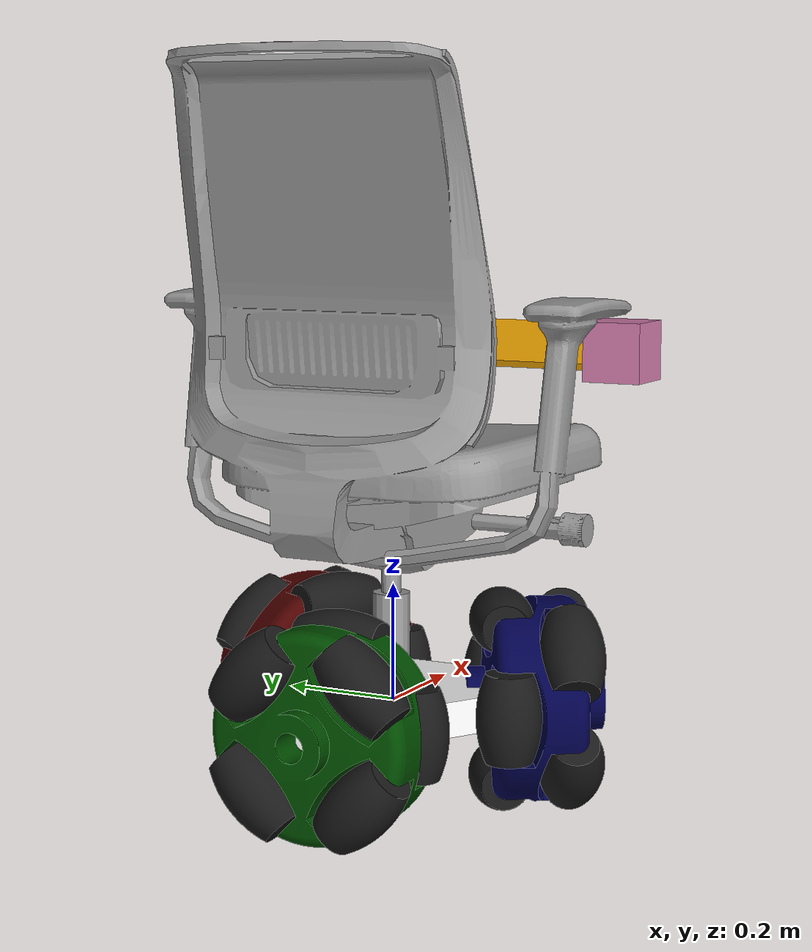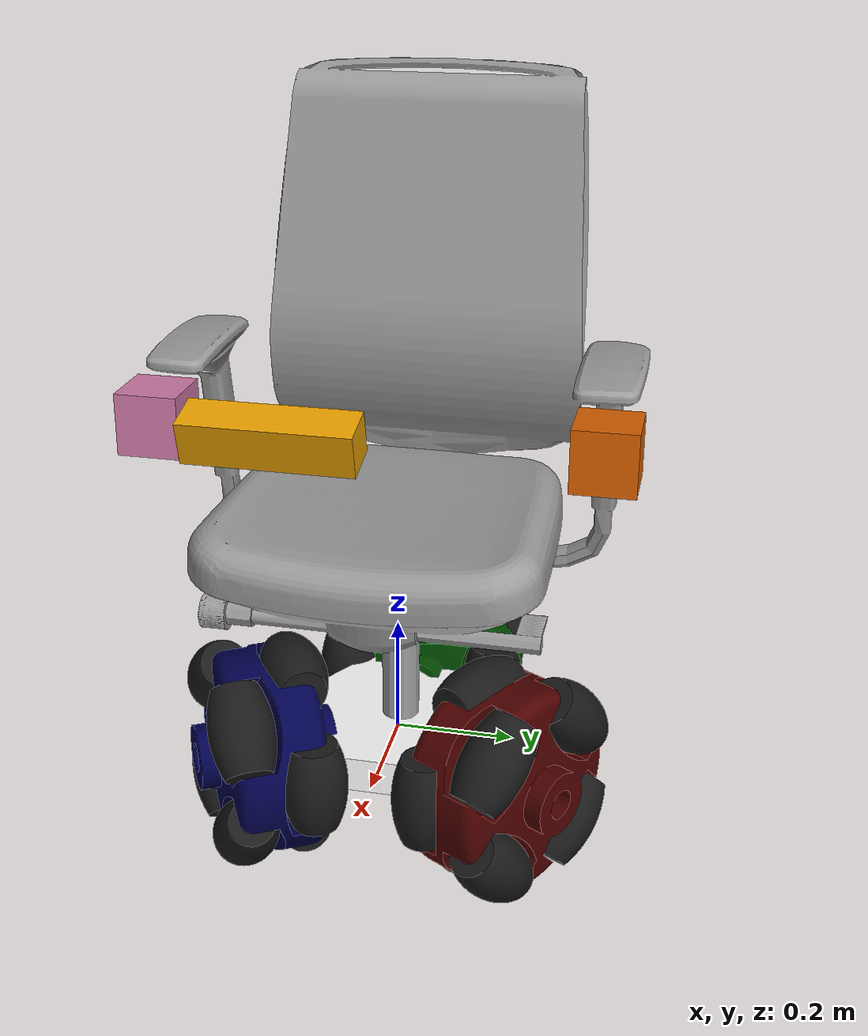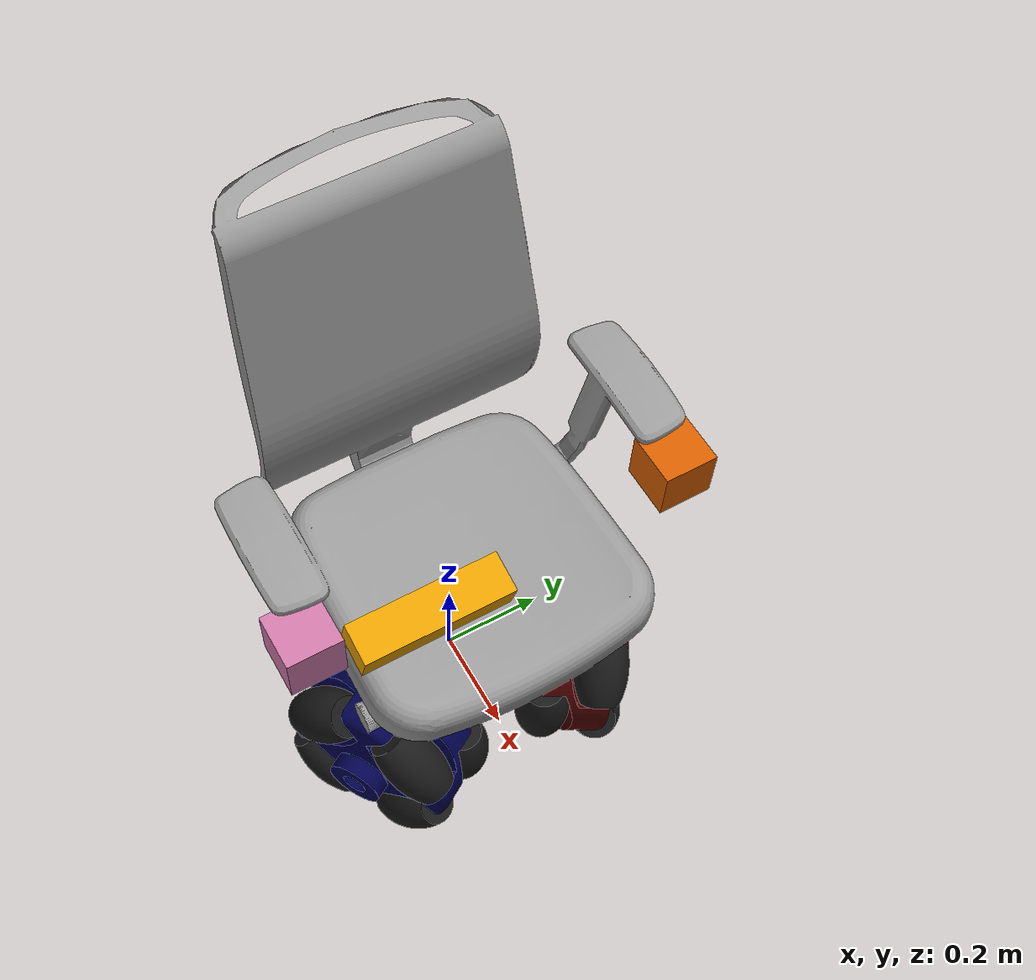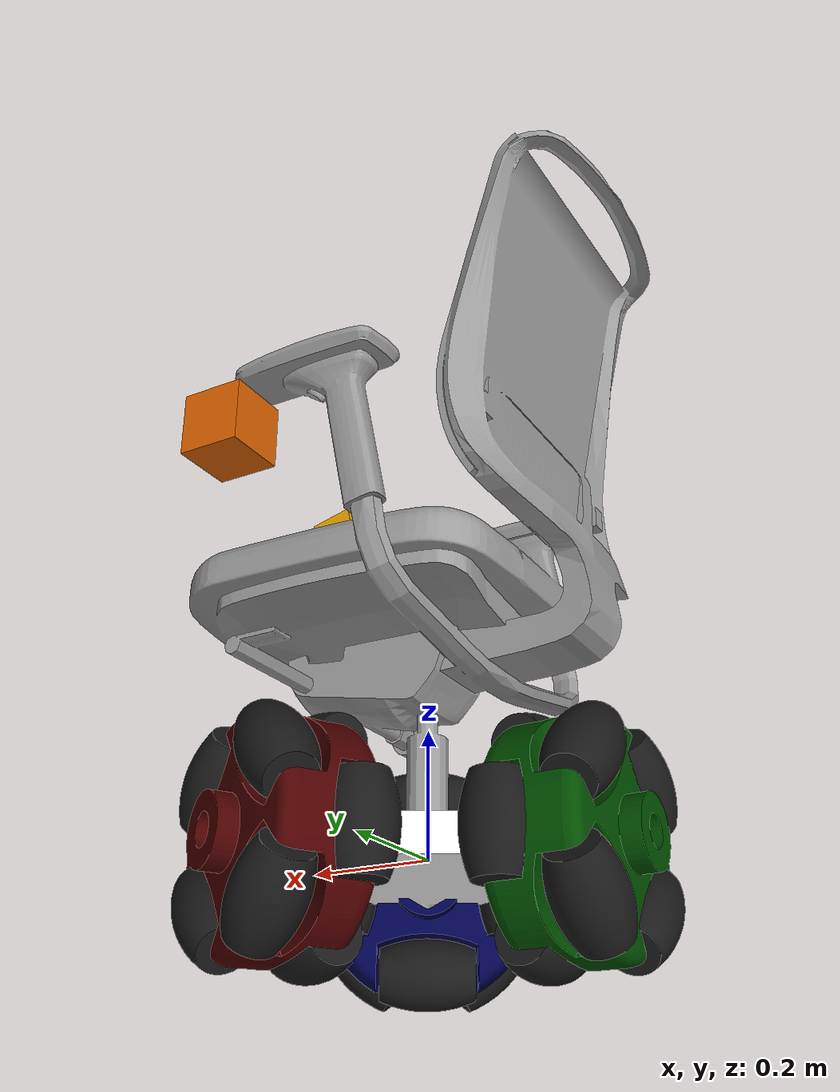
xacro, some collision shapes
<?xml version="1.0"?>
<robot xmlns:xacro="http://www.ros.org/wiki/xacro" name="open_base">

	<xacro:include filename="$(find omni3ros_pkg)/urdf/model_ver2/rim.urdf.xacro"/>
	<xacro:include filename="$(find omni3ros_pkg)/urdf/model_ver2/laser.urdf.xacro"/>

	<xacro:arg name="sonar" default="false"/>
	<xacro:arg name="lidar" default="true"/>
	<xacro:arg name="camera" default="true"/>

	<link name="base_link">
		<inertial>
			<mass value="10.17862944645"/>
			<inertia
				ixx="0.2035985530754"
				ixy="0"
				ixz="0"
				iyy="0.2035985530754"
				iyz="0"
				izz="0.3945961663220"/>
		</inertial>
		<visual>
			<geometry>
				<mesh filename="package://omni3ros_pkg/mesh/model_ver2/base.stl"/>
			</geometry>
			<material name="base_material">
				<color rgba="1 1 1 1"/>
			</material>
		</visual>
		<collision>
			<geometry>
				<mesh filename="package://omni3ros_pkg/mesh/model_ver2/base.stl"/>
			</geometry>
		</collision>
	</link>

	<xacro:rim_macro
		name="left"
		color="0.3 0 0"
		xyz="0.12 0.207864 0"
		rpy="1.570796326794896 0 -0.523599"/>
	<xacro:rim_macro
		name="back"
		color="0 0.3 0"
		xyz="-0.24 0 0"
		rpy="1.570796326794896 0 1.5708"/>
	<xacro:rim_macro
		name="right"
		color="0 0 0.3"
		xyz="0.12 -0.207864 0"
		rpy="1.570796326794896 0 -2.61799"/>

	<gazebo reference="base_link">
    		<material>Gazebo/White</material>
  	</gazebo>

	<gazebo reference="rim_left_link">
    		<material>Gazebo/Red</material>
  	</gazebo>

	<gazebo reference="rim_back_link">
    		<material>Gazebo/Green</material>
  	</gazebo>

	<gazebo reference="rim_right_link">
    		<material>Gazebo/Blue</material>
  	</gazebo>

	<!-- Chair -->
	<joint name="chair_joint" type="fixed">
		<axis xyz="0 1 0" />
		<origin xyz="0 0 0" rpy="0 0 1.57"/>
		<parent link="base_link"/>
		<child link="chair_frame"/>
	</joint>

	<link name="chair_frame">
		<collision>
			<origin xyz="0 0 0.7" rpy="0 0 0"/>
			<geometry>
				<box size="0.8 0.6 0.8"/>
			</geometry>
		</collision>

		<visual>
			<origin xyz="0 0 0" rpy="0 0 0"/>
			<geometry>
				<mesh filename="package://omni3ros_pkg/mesh/model_ver2/office_chair.stl"/>
			</geometry>
		</visual>

		<inertial>
			<mass value="1e-5" />
			<origin xyz="0 0 0" rpy="0 0 0"/>
			<inertia ixx="1e-6" ixy="0" ixz="0" iyy="1e-6" iyz="0" izz="1e-6" />
		</inertial>
	</link>

	<gazebo reference="chair_frame">
    		<material>Gazebo/Gray</material>
  	</gazebo>

	<!-- Hokuyo Laser -->
	<xacro:if value="$(arg lidar)">

		<xacro:laser
			name="_left"
			xyz="0.15 0.35 .6"/>

		<xacro:laser
			name="_right"
			xyz="0.15 -0.35 .6"/>

		<joint name="laser_frame_merged_joint" type="fixed">
            <origin xyz="0.15 0 0.6" rpy="0 0 0"/>
            <parent link="base_link"/>
            <child link="laser_frame_merged"/>
        </joint>

        <link name="laser_frame_merged"/>

	</xacro:if>

	<!-- Sonar -->
	<xacro:if value="$(arg sonar)">
		<joint name="sonar_frame_joint" type="fixed">
			<axis xyz="0 1 0" />
			<origin xyz="0 0 .3" rpy="0 0 0"/>
			<parent link="base_link"/>
			<child link="sonar_frame"/>
		</joint>

		<link name="sonar_frame">
			<collision>
				<origin xyz="0 0 0" rpy="0 0 0"/>
				<geometry>
					<box size="0.01 0.01 0.01"/>
				</geometry>
			</collision>

			<visual>
				<origin xyz="0 0 0" rpy="0 0 0"/>
				<geometry>
					<box size="0.01 0.01 0.01"/>
				</geometry>
			</visual>

			<inertial>
				<mass value="1e-5" />
				<origin xyz="0 0 0" rpy="0 0 0"/>
				<inertia ixx="1e-6" ixy="0" ixz="0" iyy="1e-6" iyz="0" izz="1e-6" />
			</inertial>
		</link>

		<gazebo reference="sonar_frame">
			<sensor type="ray" name="TeraRanger">
				<pose>0 0 0 0 0 0</pose>
				<visualize>true</visualize>
				<update_rate>50</update_rate>
				<ray>
					<scan>
						<horizontal>
							<samples>10</samples>
							<resolution>1</resolution>
							<min_angle>-0.14835</min_angle>
							<max_angle>0.14835</max_angle>
						</horizontal>
						<vertical>
							<samples>10</samples>
							<resolution>1</resolution>
							<min_angle>-0.14835</min_angle>
							<max_angle>0.14835</max_angle>
						</vertical>
					</scan>
					<range>
						<min>0.01</min>
						<!-- TODO range is shown too small in the Gazebo and Rviz -->
						<max>4</max>
						<resolution>0.02</resolution>
					</range>
				</ray>
				<plugin filename="libgazebo_ros_range.so" name="gazebo_ros_range">
					<alwaysOn>true</alwaysOn>
					<updateRate>50</updateRate>
					<topicName>sonar</topicName>
					<frameName>sonar_frame</frameName>
					<radiation>ultrasound</radiation>
					<fov>0.2967</fov>
				</plugin>
			</sensor>
		</gazebo>
	</xacro:if>

	<!-- RGBD Camera -->

	<!-- Intel realsense -->

	<!-- Kinnect -->
	<xacro:if value="$(arg camera)">
		<joint name="camera_frame_joint" type="fixed">
			<axis xyz="0 1 0" />
			<!-- Positive pitch so camera looks downwards to see ground obstacles -->
			<origin xyz="0.2 -0.15 .6" rpy="0 0.25 0"/>
			<parent link="base_link"/>
			<child link="camera_frame"/>
		</joint>

		<link name="camera_frame">
			<collision name="collision">
				<origin xyz="0 0 0" rpy="0 0 0"/>
				<geometry>
					<box size="0.073000 0.276000 0.072000"/>
				</geometry>
			</collision>

			<visual name="visual">
				<origin xyz="0 0 0" rpy="0 0 0"/>
				<geometry>
					<mesh filename="package://omni3ros_pkg/mesh/kinect.dae"/>
				</geometry>
			</visual>

			<inertial>
				<mass value="0.1" />
				<origin xyz="0 0 0" rpy="0 0 0"/>
				<inertia ixx="1e-6" ixy="0" ixz="0" iyy="1e-6" iyz="0" izz="1e-6" />
			</inertial>
		</link>

		<joint name="camera_optical_joint" type="fixed">
            <origin xyz="0 0 0" rpy="-1.5708 0 -1.5708"/>
            <parent link="camera_frame"/>
            <child link="camera_frame_optical"/>
        </joint>

        <link name="camera_frame_optical"/>

		<gazebo reference="camera_frame">
			<sensor type="depth" name="camera">
				<update_rate>20</update_rate>
				<camera>
					<horizontal_fov>1.047198</horizontal_fov>
					<image>
						<width>640</width>
						<height>480</height>
						<format>R8G8B8</format>
					</image>
					<!-- In default setup it was turned on, however it's doesn't make sense  -->
				</camera>

				<plugin name="camera_plugin" filename="libgazebo_ros_openni_kinect.so">
					<baseline>0.2</baseline>
					<alwaysOn>true</alwaysOn>
					<updateRate>0.0</updateRate>
					<cameraName>camera_ir</cameraName>
					<imageTopicName>/camera/color/image_raw</imageTopicName>
					<cameraInfoTopicName>/camera/color/camera_info</cameraInfoTopicName>
					<depthImageTopicName>/camera/depth/image_raw</depthImageTopicName>
					<depthImageCameraInfoTopicName>/camera/depth/camera_info</depthImageCameraInfoTopicName>
					<pointCloudTopicName>/camera/depth/points</pointCloudTopicName>
					<frameName>camera_frame_optical</frameName>
					<pointCloudCutoff>0.5</pointCloudCutoff>
					<!-- We cut point cloud also when converting point cloud to laserscans (parameters are in camera_to_scan.launch) -->
					<pointCloudCutoffMax>3.5</pointCloudCutoffMax>
					<distortionK1>0</distortionK1>
					<distortionK2>0</distortionK2>
					<distortionK3>0</distortionK3>
					<distortionT1>0</distortionT1>
					<distortionT2>0</distortionT2>
					<CxPrime>0</CxPrime>
					<Cx>0</Cx>
					<Cy>0</Cy>
					<focalLength>0</focalLength>
					<hackBaseline>0</hackBaseline>
				</plugin>
			</sensor>
		</gazebo>
	</xacro:if>

	<!-- IMU -->
	<gazebo>
		<plugin name="gazebo_ros_imu" filename="libgazebo_ros_imu.so">
			<alwaysOn>true</alwaysOn>
			<bodyName>base_link</bodyName>
			<topicName>imu</topicName>
			<serviceName>imu_service</serviceName>
			<gaussianNoise>0.0</gaussianNoise>
			<updateRate>50.0</updateRate>
		</plugin>
	</gazebo>

	<!-- ROS control -->
	<gazebo>
		<plugin name="gazebo_ros_control" filename="libgazebo_ros_control.so">
		<robotNamespace>/open_base</robotNamespace>
		</plugin>
	</gazebo>

</robot>

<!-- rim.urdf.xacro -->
<robot xmlns:xacro="http://www.ros.org/wiki/xacro">

<xacro:include filename="$(find omni3ros_pkg)/urdf/model_ver2/roller.urdf.xacro"/>

<xacro:macro
	name="rim_macro"
	params="name color xyz rpy">

		<link name="rim_${name}_link">
			<inertial>
				<origin xyz="0 0 -0.000343"/>
				<mass value="0.00835758"/>
				<inertia
					ixx="6.63684e-04"
					ixy="0"
					ixz="0"
					iyy="6.63684e-04"
					iyz="0"
					izz="9.40333e-04"/>

			</inertial>
			<visual>
				<geometry>
					<mesh filename="package://omni3ros_pkg/mesh/model_ver2/rim.stl"/>
				</geometry>
				<material name="rim_${name}_material">
					<color rgba="${color} 1"/>
				</material>
			</visual>
			<collision>
				<geometry>
					<mesh filename="package://omni3ros_pkg/mesh/model_ver2/rim.stl"/>
				</geometry>
			</collision>

		</link>

		<joint
			name="rim_${name}_joint"
			type="continuous">

			<parent link="base_link" />
			<child link="rim_${name}_link" />
			<axis xyz="0 0 1"/>
			<origin xyz="${xyz}" rpy="${rpy}"/>

		</joint>

		<xacro:roller_macro
			parent="${name}"
			name="e"
			xyz="0.1355 0 0.055"
			rpy="-1.570796326794896 0 0"
		/>
		<xacro:roller_macro
			parent="${name}"
			name="ne"
			xyz="0.0958129689 0.0958129689 -0.055"
			rpy="-1.570796326794896 0 0.7853981633974483"
		/>
		<xacro:roller_macro
			parent="${name}"
			name="n"
			xyz="0 0.1355 0.055"
			rpy="-1.570796326794896 0 1.570796326794896"
		/>
		<xacro:roller_macro
			parent="${name}"
			name="nw"
			xyz="-0.0958129689 0.0958129689 -0.055"
			rpy="-1.570796326794896 0 2.356194490192345"
		/>
		<xacro:roller_macro
			parent="${name}"
			name="w"
			xyz="-0.1355 0 0.055"
			rpy="-1.570796326794896 0 3.141592653589793"
		/>
		<xacro:roller_macro
			parent="${name}"
			name="sw"
			xyz="-0.0958129689 -0.0958129689 -0.055"
			rpy="-1.570796326794896 0 -2.356194490192345"
		/>
		<xacro:roller_macro
			parent="${name}"
			name="s"
			xyz="0 -0.1355 0.055"
			rpy="-1.570796326794896 0 -1.570796326794896"
		/>
		<xacro:roller_macro
			parent="${name}"
			name="se"
			xyz="0.0958129689 -0.0958129689 -0.055"
			rpy="-1.570796326794896 0 -0.7853981633974483"
		/>

		<transmission name="rim_${name}_transmission">
			<type>transmission_interface/SimpleTransmission</type>
			<joint name="rim_${name}_joint">
				<hardwareInterface>hardware_interface/VelocityJointInterface</hardwareInterface>
			</joint>
			<actuator name="rim_${name}_motor">
				<hardwareInterface>hardware_interface/VelocityJointInterface</hardwareInterface>
				<mechanicalReduction>1</mechanicalReduction>
			</actuator>
		</transmission>

	</xacro:macro>

</robot>

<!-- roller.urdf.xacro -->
<robot xmlns:xacro="http://www.ros.org/wiki/xacro">

<xacro:macro
	name="roller_macro"
	params="parent name xyz rpy">

		<link name="roller_${name}_rim_${parent}_link">
			<inertial>
				<mass value="0.00113845"/>
				<inertia
					ixx="2.53776e-05"
					ixy="0"
					ixz="0"
					iyy="2.53776e-05"
					iyz="0"
					izz="1.47666e-05"/>
			</inertial>
			<visual>
				<geometry>
					<mesh filename="package://omni3ros_pkg/mesh/model_ver2/roller.stl"/>
				</geometry>
				<material name="roller_material">
					<color rgba="0.1 0.1 0.1 1"/>
				</material>
			</visual>
			<collision>
				<geometry>
					<mesh filename="package://omni3ros_pkg/mesh/model_ver2/roller.stl"/>
				</geometry>
			</collision>
		</link>
	<gazebo reference="roller_${name}_rim_${parent}_link">
    		<material>Gazebo/Black</material>
  	</gazebo>
		<joint name="roller_${name}_rim_${parent}_joint" type="continuous">
			<parent link="rim_${parent}_link"/>
			<child link="roller_${name}_rim_${parent}_link"/>
			<axis xyz="0 0 1"/>
			<origin xyz="${xyz}" rpy="${rpy}"/>

		</joint>
	</xacro:macro>

</robot>

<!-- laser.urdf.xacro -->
<robot xmlns:xacro="http://www.ros.org/wiki/xacro">

<xacro:macro
	name="laser"
	params="name xyz">

	<joint name="laser_frame${name}_joint" type="fixed">
		<axis xyz="0 1 0" />
		<origin xyz="${xyz}" rpy="0 0 0"/>
		<parent link="base_link"/>
		<child link="laser_frame${name}"/>
	</joint>

	<link name="laser_frame${name}">
		<collision>
			<origin xyz="0 0 0" rpy="0 0 0"/>
			<geometry>
				<box size="0.1 0.1 0.1"/>
			</geometry>
		</collision>

		<visual>
			<origin xyz="0 0 0" rpy="0 0 0"/>
			<geometry>
				<mesh filename="package://omni3ros_pkg/mesh/hokuyo.dae"/>
			</geometry>
		</visual>

		<inertial>
			<mass value="1e-5" />
			<origin xyz="0 0 0" rpy="0 0 0"/>
			<inertia ixx="1e-6" ixy="0" ixz="0" iyy="1e-6" iyz="0" izz="1e-6" />
		</inertial>
	</link>

	<gazebo reference="laser_frame${name}">
		<sensor type="gpu_ray" name="head_hokuyo_sensor${name}">
			<pose>0 0 0 0 0 0</pose>
			<visualize>false</visualize>
			<update_rate>40</update_rate>
			<ray>
				<scan>
					<horizontal>
					<samples>720</samples>
					<resolution>1</resolution>
					<min_angle>-3.14159</min_angle>
					<max_angle>3.14159</max_angle>
					</horizontal>
				</scan>
				<range>
					<min>0.10</min>
					<max>30.0</max>
					<resolution>0.01</resolution>
				</range>
				<noise>
					<type>gaussian<mesh filename="package://omni3ros_pkg/mesh/hokuyo.dae"/></type>
					<mean>0.0</mean>
					<stddev>0.01</stddev>
				</noise>
			</ray>
			<plugin name="gazebo_ros_head_hokuyo_controller" filename="libgazebo_ros_gpu_laser.so">
			<topicName>/scan${name}</topicName>
			<frameName>laser_frame${name}</frameName>
			</plugin>
		</sensor>
	</gazebo>

</xacro:macro>

</robot>
